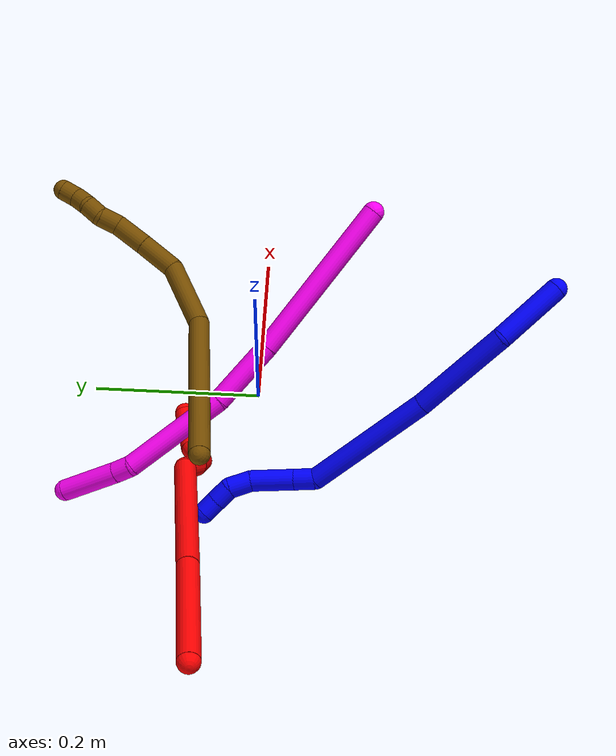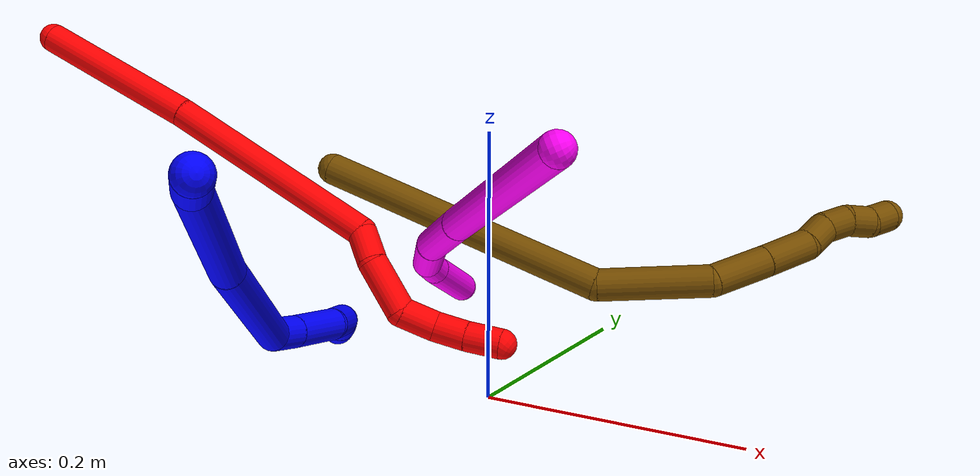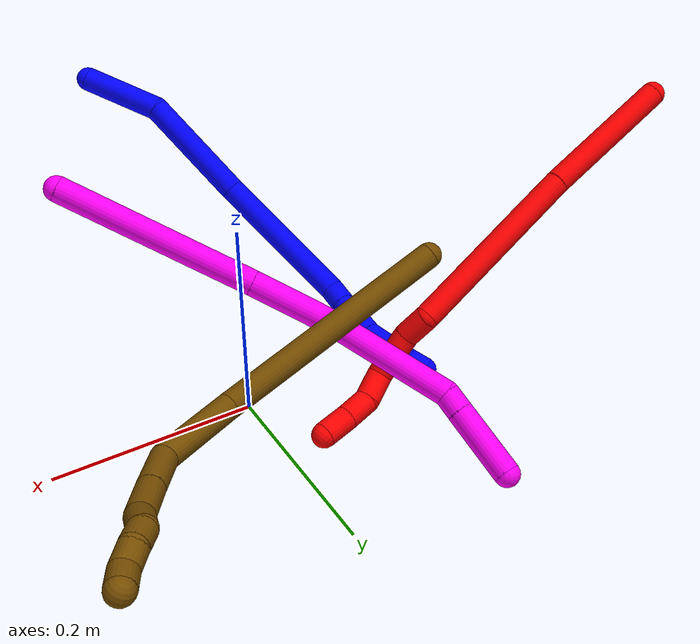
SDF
<sdf version="1.7">
 <world name="default">
  <model name="photoneo_s_sensor">
   <static>1</static>
   <pose>0 0 2 1.57079 1.57079 3.14159</pose>
   <link name="link">
    <inertial><mass>0.1</mass></inertial>
    <sensor name="sensor" type="depth">
     <update_rate>30</update_rate>
     <camera>
      <horizontal_fov>1.22</horizontal_fov>
      <image><width>1920</width><height>1200</height><format>B8G8R8</format></image>
      <clip><near>0.1</near><far>4</far></clip>
      <depth_camera><output>points</output></depth_camera>
     </camera>
     <plugin name="camera_plugin" filename="libgazebo_ros_depth_camera.so">
      <baseline>0.2</baseline>
      <alwaysOn>1</alwaysOn>
      <updateRate>0.0</updateRate>
      <cameraName>camera_ir</cameraName>
      <imageTopicName>/camera/color/image_raw</imageTopicName>
      <cameraInfoTopicName>/camera/color/camera_info</cameraInfoTopicName>
      <depthImageTopicName>/camera/depth/image_raw</depthImageTopicName>
      <depthImageCameraInfoTopicName>/camera/depth/camera_info</depthImageCameraInfoTopicName>
      <pointCloudTopicName>/camera/depth/points</pointCloudTopicName>
      <frameName>fr_optical</frameName>
      <pointCloudCutoff>0.1</pointCloudCutoff>
      <pointCloudCutoffMax>2.0</pointCloudCutoffMax>
      <distortionK1>0</distortionK1>
      <distortionK2>0</distortionK2>
      <distortionK3>0</distortionK3>
      <distortionT1>0</distortionT1>
      <distortionT2>0</distortionT2>
      <CxPrime>0</CxPrime>
      <Cx>0</Cx>
      <Cy>0</Cy>
      <focalLength>0</focalLength>
      <hackBaseline>0</hackBaseline>
     </plugin>
    </sensor>
   </link>
  </model>
  <model name="bin">
   <static>1</static>
   <link name="bottom">
    <collision name="collision-bottom">
     <pose>0 0 -0.01 0 -0 0</pose>
     <geometry><box><size>0.8 0.6 0.02</size></box></geometry>
     <surface>
      <friction><ode><mu>100</mu><mu2>100</mu2></ode></friction>
      <contact><collide_bitmask>65535</collide_bitmask></contact>
     </surface>
    </collision>
   </link>
   <link name="west_wall">
    <collision name="collision-west_wall">
     <pose>-0.41 0 0.1 0 -0 0</pose>
     <geometry><box><size>0.02 0.6 0.2</size></box></geometry>
     <surface>
      <friction><ode><mu>100</mu><mu2>100</mu2></ode></friction>
      <contact><collide_bitmask>65535</collide_bitmask></contact>
     </surface>
    </collision>
   </link>
   <link name="east_wall">
    <collision name="collision-east_wall">
     <pose>0.41 0 0.1 0 -0 0</pose>
     <geometry><box><size>0.02 0.6 0.2</size></box></geometry>
     <surface>
      <friction><ode><mu>100</mu><mu2>100</mu2></ode></friction>
      <contact><collide_bitmask>65535</collide_bitmask></contact>
     </surface>
    </collision>
   </link>
   <link name="south_wall">
    <collision name="collision-south_wall">
     <pose>0 -0.31 0.1 0 -0 0</pose>
     <geometry><box><size>0.8 0.02 0.2</size></box></geometry>
     <surface>
      <friction><ode><mu>100</mu><mu2>100</mu2></ode></friction>
      <contact><collide_bitmask>65535</collide_bitmask></contact>
     </surface>
    </collision>
   </link>
   <link name="north_wall">
    <collision name="collision-north_wall">
     <pose>0 0.31 0.1 0 -0 0</pose>
     <geometry><box><size>0.8 0.02 0.2</size></box></geometry>
     <surface>
      <friction><ode><mu>100</mu><mu2>100</mu2></ode></friction>
      <contact><collide_bitmask>65535</collide_bitmask></contact>
     </surface>
    </collision>
   </link>
  </model>
  <model name="1">
   <static>0</static>
   <link name="1">
    <collision name="collision-cylinder-e_1_1_4">
     <pose>-0.002635 0.006434 -0.040411 -2.98372 -0.064309 0.772421</pose>
     <geometry><cylinder><radius>0.0125</radius><length>0.082009</length></cylinder></geometry>
     <surface>
      <friction><ode><mu>1.16</mu><mu2>1.16</mu2><slip1>0</slip1><slip2>0</slip2></ode></friction>
      <contact><ode><kp>1e+06</kp><kd>1</kd><max_vel>0</max_vel><min_depth>0.001</min_depth></ode></contact>
     </surface>
    </collision>
    <visual name="visual-cylinder-e_1_1_4">
     <pose>-0.002635 0.006434 -0.040411 -2.98372 -0.064309 0.772421</pose>
     <geometry><cylinder><radius>0.0125</radius><length>0.082009</length></cylinder></geometry>
     <material><ambient>0 0 1 1</ambient></material>
    </visual>
    <collision name="collision-cylinder-e_2_4_5">
     <pose>0.001349 0.042916 -0.131971 -2.61042 0.111114 -0.403353</pose>
     <geometry><cylinder><radius>0.0125</radius><length>0.119381</length></cylinder></geometry>
     <surface>
      <friction><ode><mu>1.16</mu><mu2>1.16</mu2><slip1>0</slip1><slip2>0</slip2></ode></friction>
      <contact><ode><kp>1e+06</kp><kd>1</kd><max_vel>0</max_vel><min_depth>0.001</min_depth></ode></contact>
     </surface>
    </collision>
    <visual name="visual-cylinder-e_2_4_5">
     <pose>0.001349 0.042916 -0.131971 -2.61042 0.111114 -0.403353</pose>
     <geometry><cylinder><radius>0.0125</radius><length>0.119381</length></cylinder></geometry>
     <material><ambient>0 0 1 1</ambient></material>
    </visual>
    <collision name="collision-cylinder-e_3_5_6">
     <pose>0.008865 0.11132 -0.249902 -2.62027 0.011654 -0.043684</pose>
     <geometry><cylinder><radius>0.0125</radius><length>0.154035</length></cylinder></geometry>
     <surface>
      <friction><ode><mu>1.16</mu><mu2>1.16</mu2><slip1>0</slip1><slip2>0</slip2></ode></friction>
      <contact><ode><kp>1e+06</kp><kd>1</kd><max_vel>0</max_vel><min_depth>0.001</min_depth></ode></contact>
     </surface>
    </collision>
    <visual name="visual-cylinder-e_3_5_6">
     <pose>0.008865 0.11132 -0.249902 -2.62027 0.011654 -0.043684</pose>
     <geometry><cylinder><radius>0.0125</radius><length>0.154035</length></cylinder></geometry>
     <material><ambient>0 0 1 1</ambient></material>
    </visual>
    <collision name="collision-cylinder-e_4_6_7">
     <pose>0.003537 0.157117 -0.324651 -2.39016 -0.518809 1.18446</pose>
     <geometry><cylinder><radius>0.0125</radius><length>0.025109</length></cylinder></geometry>
     <surface>
      <friction><ode><mu>1.16</mu><mu2>1.16</mu2><slip1>0</slip1><slip2>0</slip2></ode></friction>
      <contact><ode><kp>1e+06</kp><kd>1</kd><max_vel>0</max_vel><min_depth>0.001</min_depth></ode></contact>
     </surface>
    </collision>
    <visual name="visual-cylinder-e_4_6_7">
     <pose>0.003537 0.157117 -0.324651 -2.39016 -0.518809 1.18446</pose>
     <geometry><cylinder><radius>0.0125</radius><length>0.025109</length></cylinder></geometry>
     <material><ambient>0 0 1 1</ambient></material>
    </visual>
    <collision name="collision-cylinder-e_5_7_8">
     <pose>-0.015891 0.179035 -0.348889 -2.41456 -0.544985 1.26709</pose>
     <geometry><cylinder><radius>0.0125</radius><length>0.050936</length></cylinder></geometry>
     <surface>
      <friction><ode><mu>1.16</mu><mu2>1.16</mu2><slip1>0</slip1><slip2>0</slip2></ode></friction>
      <contact><ode><kp>1e+06</kp><kd>1</kd><max_vel>0</max_vel><min_depth>0.001</min_depth></ode></contact>
     </surface>
    </collision>
    <visual name="visual-cylinder-e_5_7_8">
     <pose>-0.015891 0.179035 -0.348889 -2.41456 -0.544985 1.26709</pose>
     <geometry><cylinder><radius>0.0125</radius><length>0.050936</length></cylinder></geometry>
     <material><ambient>0 0 1 1</ambient></material>
    </visual>
    <collision name="collision-cylinder-e_6_8_9">
     <pose>-0.034239 0.198505 -0.376557 -2.7285 -0.39215 1.51736</pose>
     <geometry><cylinder><radius>0.0125</radius><length>0.026928</length></cylinder></geometry>
     <surface>
      <friction><ode><mu>1.16</mu><mu2>1.16</mu2><slip1>0</slip1><slip2>0</slip2></ode></friction>
      <contact><ode><kp>1e+06</kp><kd>1</kd><max_vel>0</max_vel><min_depth>0.001</min_depth></ode></contact>
     </surface>
    </collision>
    <visual name="visual-cylinder-e_6_8_9">
     <pose>-0.034239 0.198505 -0.376557 -2.7285 -0.39215 1.51736</pose>
     <geometry><cylinder><radius>0.0125</radius><length>0.026928</length></cylinder></geometry>
     <material><ambient>0 0 1 1</ambient></material>
    </visual>
    <collision name="collision-cylinder-e_7_9_10">
     <pose>-0.038576 0.206837 -0.39819 -2.82651 0.074961 -0.46361</pose>
     <geometry><cylinder><radius>0.0125</radius><length>0.021598</length></cylinder></geometry>
     <surface>
      <friction><ode><mu>1.16</mu><mu2>1.16</mu2><slip1>0</slip1><slip2>0</slip2></ode></friction>
      <contact><ode><kp>1e+06</kp><kd>1</kd><max_vel>0</max_vel><min_depth>0.001</min_depth></ode></contact>
     </surface>
    </collision>
    <visual name="visual-cylinder-e_7_9_10">
     <pose>-0.038576 0.206837 -0.39819 -2.82651 0.074961 -0.46361</pose>
     <geometry><cylinder><radius>0.0125</radius><length>0.021598</length></cylinder></geometry>
     <material><ambient>0 0 1 1</ambient></material>
    </visual>
    <collision name="collision-cylinder-e_8_10_2">
     <pose>-0.037288 0.212593 -0.418121 -2.89702 0.047981 -0.385627</pose>
     <geometry><cylinder><radius>0.0125</radius><length>0.020003</length></cylinder></geometry>
     <surface>
      <friction><ode><mu>1.16</mu><mu2>1.16</mu2><slip1>0</slip1><slip2>0</slip2></ode></friction>
      <contact><ode><kp>1e+06</kp><kd>1</kd><max_vel>0</max_vel><min_depth>0.001</min_depth></ode></contact>
     </surface>
    </collision>
    <visual name="visual-cylinder-e_8_10_2">
     <pose>-0.037288 0.212593 -0.418121 -2.89702 0.047981 -0.385627</pose>
     <geometry><cylinder><radius>0.0125</radius><length>0.020003</length></cylinder></geometry>
     <material><ambient>0 0 1 1</ambient></material>
    </visual>
    <collision name="collision-sphere-2">
     <pose>-0.036808 0.215012 -0.427814 0 -0 0</pose>
     <geometry><sphere><radius>0.0125</radius></sphere></geometry>
     <surface>
      <friction><ode><mu>1.16</mu><mu2>1.16</mu2><slip1>0</slip1><slip2>0</slip2></ode></friction>
      <contact><ode><kp>1e+06</kp><kd>1</kd><max_vel>0</max_vel><min_depth>0.001</min_depth></ode></contact>
     </surface>
    </collision>
    <visual name="visual-sphere-2">
     <pose>-0.036808 0.215012 -0.427814 0 -0 0</pose>
     <geometry><sphere><radius>0.0125</radius></sphere></geometry>
     <material><ambient>0 0 1 1</ambient></material>
    </visual>
    <collision name="collision-sphere-10">
     <pose>-0.037768 0.210174 -0.408429 0 -0 0</pose>
     <geometry><sphere><radius>0.0125</radius></sphere></geometry>
     <surface>
      <friction><ode><mu>1.16</mu><mu2>1.16</mu2><slip1>0</slip1><slip2>0</slip2></ode></friction>
      <contact><ode><kp>1e+06</kp><kd>1</kd><max_vel>0</max_vel><min_depth>0.001</min_depth></ode></contact>
     </surface>
    </collision>
    <visual name="visual-sphere-10">
     <pose>-0.037768 0.210174 -0.408429 0 -0 0</pose>
     <geometry><sphere><radius>0.0125</radius></sphere></geometry>
     <material><ambient>0 0 1 1</ambient></material>
    </visual>
    <collision name="collision-sphere-9">
     <pose>-0.039385 0.2035 -0.387952 0 -0 0</pose>
     <geometry><sphere><radius>0.0125</radius></sphere></geometry>
     <surface>
      <friction><ode><mu>1.16</mu><mu2>1.16</mu2><slip1>0</slip1><slip2>0</slip2></ode></friction>
      <contact><ode><kp>1e+06</kp><kd>1</kd><max_vel>0</max_vel><min_depth>0.001</min_depth></ode></contact>
     </surface>
    </collision>
    <visual name="visual-sphere-9">
     <pose>-0.039385 0.2035 -0.387952 0 -0 0</pose>
     <geometry><sphere><radius>0.0125</radius></sphere></geometry>
     <material><ambient>0 0 1 1</ambient></material>
    </visual>
    <collision name="collision-sphere-4">
     <pose>-0.00527 0.012867 -0.080822 0 -0 0</pose>
     <geometry><sphere><radius>0.0125</radius></sphere></geometry>
     <surface>
      <friction><ode><mu>1.16</mu><mu2>1.16</mu2><slip1>0</slip1><slip2>0</slip2></ode></friction>
      <contact><ode><kp>1e+06</kp><kd>1</kd><max_vel>0</max_vel><min_depth>0.001</min_depth></ode></contact>
     </surface>
    </collision>
    <visual name="visual-sphere-4">
     <pose>-0.00527 0.012867 -0.080822 0 -0 0</pose>
     <geometry><sphere><radius>0.0125</radius></sphere></geometry>
     <material><ambient>0 0 1 1</ambient></material>
    </visual>
    <collision name="collision-sphere-1">
     <geometry><sphere><radius>0.0125</radius></sphere></geometry>
     <surface>
      <friction><ode><mu>1.16</mu><mu2>1.16</mu2><slip1>0</slip1><slip2>0</slip2></ode></friction>
      <contact><ode><kp>1e+06</kp><kd>1</kd><max_vel>0</max_vel><min_depth>0.001</min_depth></ode></contact>
     </surface>
    </collision>
    <visual name="visual-sphere-1">
     <geometry><sphere><radius>0.0125</radius></sphere></geometry>
     <material><ambient>0 0 1 1</ambient></material>
    </visual>
    <collision name="collision-sphere-8">
     <pose>-0.029094 0.193511 -0.365161 0 -0 0</pose>
     <geometry><sphere><radius>0.0125</radius></sphere></geometry>
     <surface>
      <friction><ode><mu>1.16</mu><mu2>1.16</mu2><slip1>0</slip1><slip2>0</slip2></ode></friction>
      <contact><ode><kp>1e+06</kp><kd>1</kd><max_vel>0</max_vel><min_depth>0.001</min_depth></ode></contact>
     </surface>
    </collision>
    <visual name="visual-sphere-8">
     <pose>-0.029094 0.193511 -0.365161 0 -0 0</pose>
     <geometry><sphere><radius>0.0125</radius></sphere></geometry>
     <material><ambient>0 0 1 1</ambient></material>
    </visual>
    <collision name="collision-sphere-5">
     <pose>0.007967 0.072966 -0.18312 0 -0 0</pose>
     <geometry><sphere><radius>0.0125</radius></sphere></geometry>
     <surface>
      <friction><ode><mu>1.16</mu><mu2>1.16</mu2><slip1>0</slip1><slip2>0</slip2></ode></friction>
      <contact><ode><kp>1e+06</kp><kd>1</kd><max_vel>0</max_vel><min_depth>0.001</min_depth></ode></contact>
     </surface>
    </collision>
    <visual name="visual-sphere-5">
     <pose>0.007967 0.072966 -0.18312 0 -0 0</pose>
     <geometry><sphere><radius>0.0125</radius></sphere></geometry>
     <material><ambient>0 0 1 1</ambient></material>
    </visual>
    <collision name="collision-sphere-6">
     <pose>0.009762 0.149674 -0.316684 0 -0 0</pose>
     <geometry><sphere><radius>0.0125</radius></sphere></geometry>
     <surface>
      <friction><ode><mu>1.16</mu><mu2>1.16</mu2><slip1>0</slip1><slip2>0</slip2></ode></friction>
      <contact><ode><kp>1e+06</kp><kd>1</kd><max_vel>0</max_vel><min_depth>0.001</min_depth></ode></contact>
     </surface>
    </collision>
    <visual name="visual-sphere-6">
     <pose>0.009762 0.149674 -0.316684 0 -0 0</pose>
     <geometry><sphere><radius>0.0125</radius></sphere></geometry>
     <material><ambient>0 0 1 1</ambient></material>
    </visual>
    <collision name="collision-sphere-7">
     <pose>-0.002688 0.16456 -0.332617 0 -0 0</pose>
     <geometry><sphere><radius>0.0125</radius></sphere></geometry>
     <surface>
      <friction><ode><mu>1.16</mu><mu2>1.16</mu2><slip1>0</slip1><slip2>0</slip2></ode></friction>
      <contact><ode><kp>1e+06</kp><kd>1</kd><max_vel>0</max_vel><min_depth>0.001</min_depth></ode></contact>
     </surface>
    </collision>
    <visual name="visual-sphere-7">
     <pose>-0.002688 0.16456 -0.332617 0 -0 0</pose>
     <geometry><sphere><radius>0.0125</radius></sphere></geometry>
     <material><ambient>0 0 1 1</ambient></material>
    </visual>
    <inertial>
     <pose>-0.003823 0.099855 -0.221178 0 -0 0</pose>
     <mass>0.5</mass>
     <inertia>
      <ixx>0.000461</ixx>
      <ixy>0</ixy>
      <ixz>0</ixz>
      <iyy>-0.000423</iyy>
      <iyz>0</iyz>
      <izz>-0.000288</izz>
     </inertia>
    </inertial>
   </link>
   <pose>0.012994 -0.335062 0.226887 -1.20604 0.815914 -1.97547</pose>
  </model>
  <model name="2">
   <static>0</static>
   <link name="2">
    <collision name="collision-cylinder-e_1_1_4">
     <pose>0.011321 -0.001796 -0.071567 3.11651 0.15684 2.82501</pose>
     <geometry><cylinder><radius>0.0125</radius><length>0.144959</length></cylinder></geometry>
     <surface>
      <friction><ode><mu>1.16</mu><mu2>1.16</mu2><slip1>0</slip1><slip2>0</slip2></ode></friction>
      <contact><ode><kp>1e+06</kp><kd>1</kd><max_vel>0</max_vel><min_depth>0.001</min_depth></ode></contact>
     </surface>
    </collision>
    <visual name="visual-cylinder-e_1_1_4">
     <pose>0.011321 -0.001796 -0.071567 3.11651 0.15684 2.82501</pose>
     <geometry><cylinder><radius>0.0125</radius><length>0.144959</length></cylinder></geometry>
     <material><ambient>1 0 0 1</ambient></material>
    </visual>
    <collision name="collision-cylinder-e_2_4_5">
     <pose>0.031217 -0.005475 -0.238502 3.12185 0.089653 2.70829</pose>
     <geometry><cylinder><radius>0.0125</radius><length>0.191541</length></cylinder></geometry>
     <surface>
      <friction><ode><mu>1.16</mu><mu2>1.16</mu2><slip1>0</slip1><slip2>0</slip2></ode></friction>
      <contact><ode><kp>1e+06</kp><kd>1</kd><max_vel>0</max_vel><min_depth>0.001</min_depth></ode></contact>
     </surface>
    </collision>
    <visual name="visual-cylinder-e_2_4_5">
     <pose>0.031217 -0.005475 -0.238502 3.12185 0.089653 2.70829</pose>
     <geometry><cylinder><radius>0.0125</radius><length>0.191541</length></cylinder></geometry>
     <material><ambient>1 0 0 1</ambient></material>
    </visual>
    <collision name="collision-cylinder-e_3_5_6">
     <pose>0.03575 -0.014207 -0.345818 2.62111 -0.28546 -0.989777</pose>
     <geometry><cylinder><radius>0.0125</radius><length>0.028706</length></cylinder></geometry>
     <surface>
      <friction><ode><mu>1.16</mu><mu2>1.16</mu2><slip1>0</slip1><slip2>0</slip2></ode></friction>
      <contact><ode><kp>1e+06</kp><kd>1</kd><max_vel>0</max_vel><min_depth>0.001</min_depth></ode></contact>
     </surface>
    </collision>
    <visual name="visual-cylinder-e_3_5_6">
     <pose>0.03575 -0.014207 -0.345818 2.62111 -0.28546 -0.989777</pose>
     <geometry><cylinder><radius>0.0125</radius><length>0.028706</length></cylinder></geometry>
     <material><ambient>1 0 0 1</ambient></material>
    </visual>
    <collision name="collision-cylinder-e_4_6_7">
     <pose>0.024002 -0.025673 -0.379618 2.93336 -0.332238 -2.02695</pose>
     <geometry><cylinder><radius>0.0125</radius><length>0.047253</length></cylinder></geometry>
     <surface>
      <friction><ode><mu>1.16</mu><mu2>1.16</mu2><slip1>0</slip1><slip2>0</slip2></ode></friction>
      <contact><ode><kp>1e+06</kp><kd>1</kd><max_vel>0</max_vel><min_depth>0.001</min_depth></ode></contact>
     </surface>
    </collision>
    <visual name="visual-cylinder-e_4_6_7">
     <pose>0.024002 -0.025673 -0.379618 2.93336 -0.332238 -2.02695</pose>
     <geometry><cylinder><radius>0.0125</radius><length>0.047253</length></cylinder></geometry>
     <material><ambient>1 0 0 1</ambient></material>
    </visual>
    <collision name="collision-cylinder-e_5_7_8">
     <pose>0.01728 -0.025084 -0.41573 -2.79154 0.064734 -0.362181</pose>
     <geometry><cylinder><radius>0.0125</radius><length>0.030425</length></cylinder></geometry>
     <surface>
      <friction><ode><mu>1.16</mu><mu2>1.16</mu2><slip1>0</slip1><slip2>0</slip2></ode></friction>
      <contact><ode><kp>1e+06</kp><kd>1</kd><max_vel>0</max_vel><min_depth>0.001</min_depth></ode></contact>
     </surface>
    </collision>
    <visual name="visual-cylinder-e_5_7_8">
     <pose>0.01728 -0.025084 -0.41573 -2.79154 0.064734 -0.362181</pose>
     <geometry><cylinder><radius>0.0125</radius><length>0.030425</length></cylinder></geometry>
     <material><ambient>1 0 0 1</ambient></material>
    </visual>
    <collision name="collision-cylinder-e_6_8_9">
     <pose>0.022907 -0.018347 -0.442924 -3.02378 0.342412 -2.48417</pose>
     <geometry><cylinder><radius>0.0125</radius><length>0.027654</length></cylinder></geometry>
     <surface>
      <friction><ode><mu>1.16</mu><mu2>1.16</mu2><slip1>0</slip1><slip2>0</slip2></ode></friction>
      <contact><ode><kp>1e+06</kp><kd>1</kd><max_vel>0</max_vel><min_depth>0.001</min_depth></ode></contact>
     </surface>
    </collision>
    <visual name="visual-cylinder-e_6_8_9">
     <pose>0.022907 -0.018347 -0.442924 -3.02378 0.342412 -2.48417</pose>
     <geometry><cylinder><radius>0.0125</radius><length>0.027654</length></cylinder></geometry>
     <material><ambient>1 0 0 1</ambient></material>
    </visual>
    <collision name="collision-cylinder-e_7_9_2">
     <pose>0.033586 -0.015025 -0.469176 -3.00794 0.422189 -2.53617</pose>
     <geometry><cylinder><radius>0.0125</radius><length>0.029462</length></cylinder></geometry>
     <surface>
      <friction><ode><mu>1.16</mu><mu2>1.16</mu2><slip1>0</slip1><slip2>0</slip2></ode></friction>
      <contact><ode><kp>1e+06</kp><kd>1</kd><max_vel>0</max_vel><min_depth>0.001</min_depth></ode></contact>
     </surface>
    </collision>
    <visual name="visual-cylinder-e_7_9_2">
     <pose>0.033586 -0.015025 -0.469176 -3.00794 0.422189 -2.53617</pose>
     <geometry><cylinder><radius>0.0125</radius><length>0.029462</length></cylinder></geometry>
     <material><ambient>1 0 0 1</ambient></material>
    </visual>
    <collision name="collision-sphere-2">
     <pose>0.039622 -0.013235 -0.482494 0 -0 0</pose>
     <geometry><sphere><radius>0.0125</radius></sphere></geometry>
     <surface>
      <friction><ode><mu>1.16</mu><mu2>1.16</mu2><slip1>0</slip1><slip2>0</slip2></ode></friction>
      <contact><ode><kp>1e+06</kp><kd>1</kd><max_vel>0</max_vel><min_depth>0.001</min_depth></ode></contact>
     </surface>
    </collision>
    <visual name="visual-sphere-2">
     <pose>0.039622 -0.013235 -0.482494 0 -0 0</pose>
     <geometry><sphere><radius>0.0125</radius></sphere></geometry>
     <material><ambient>1 0 0 1</ambient></material>
    </visual>
    <collision name="collision-sphere-9">
     <pose>0.027549 -0.016816 -0.455858 0 -0 0</pose>
     <geometry><sphere><radius>0.0125</radius></sphere></geometry>
     <surface>
      <friction><ode><mu>1.16</mu><mu2>1.16</mu2><slip1>0</slip1><slip2>0</slip2></ode></friction>
      <contact><ode><kp>1e+06</kp><kd>1</kd><max_vel>0</max_vel><min_depth>0.001</min_depth></ode></contact>
     </surface>
    </collision>
    <visual name="visual-sphere-9">
     <pose>0.027549 -0.016816 -0.455858 0 -0 0</pose>
     <geometry><sphere><radius>0.0125</radius></sphere></geometry>
     <material><ambient>1 0 0 1</ambient></material>
    </visual>
    <collision name="collision-sphere-4">
     <pose>0.022642 -0.003591 -0.143134 0 -0 0</pose>
     <geometry><sphere><radius>0.0125</radius></sphere></geometry>
     <surface>
      <friction><ode><mu>1.16</mu><mu2>1.16</mu2><slip1>0</slip1><slip2>0</slip2></ode></friction>
      <contact><ode><kp>1e+06</kp><kd>1</kd><max_vel>0</max_vel><min_depth>0.001</min_depth></ode></contact>
     </surface>
    </collision>
    <visual name="visual-sphere-4">
     <pose>0.022642 -0.003591 -0.143134 0 -0 0</pose>
     <geometry><sphere><radius>0.0125</radius></sphere></geometry>
     <material><ambient>1 0 0 1</ambient></material>
    </visual>
    <collision name="collision-sphere-1">
     <geometry><sphere><radius>0.0125</radius></sphere></geometry>
     <surface>
      <friction><ode><mu>1.16</mu><mu2>1.16</mu2><slip1>0</slip1><slip2>0</slip2></ode></friction>
      <contact><ode><kp>1e+06</kp><kd>1</kd><max_vel>0</max_vel><min_depth>0.001</min_depth></ode></contact>
     </surface>
    </collision>
    <visual name="visual-sphere-1">
     <geometry><sphere><radius>0.0125</radius></sphere></geometry>
     <material><ambient>1 0 0 1</ambient></material>
    </visual>
    <collision name="collision-sphere-8">
     <pose>0.018264 -0.019878 -0.42999 0 -0 0</pose>
     <geometry><sphere><radius>0.0125</radius></sphere></geometry>
     <surface>
      <friction><ode><mu>1.16</mu><mu2>1.16</mu2><slip1>0</slip1><slip2>0</slip2></ode></friction>
      <contact><ode><kp>1e+06</kp><kd>1</kd><max_vel>0</max_vel><min_depth>0.001</min_depth></ode></contact>
     </surface>
    </collision>
    <visual name="visual-sphere-8">
     <pose>0.018264 -0.019878 -0.42999 0 -0 0</pose>
     <geometry><sphere><radius>0.0125</radius></sphere></geometry>
     <material><ambient>1 0 0 1</ambient></material>
    </visual>
    <collision name="collision-sphere-5">
     <pose>0.039791 -0.007358 -0.333869 0 -0 0</pose>
     <geometry><sphere><radius>0.0125</radius></sphere></geometry>
     <surface>
      <friction><ode><mu>1.16</mu><mu2>1.16</mu2><slip1>0</slip1><slip2>0</slip2></ode></friction>
      <contact><ode><kp>1e+06</kp><kd>1</kd><max_vel>0</max_vel><min_depth>0.001</min_depth></ode></contact>
     </surface>
    </collision>
    <visual name="visual-sphere-5">
     <pose>0.039791 -0.007358 -0.333869 0 -0 0</pose>
     <geometry><sphere><radius>0.0125</radius></sphere></geometry>
     <material><ambient>1 0 0 1</ambient></material>
    </visual>
    <collision name="collision-sphere-6">
     <pose>0.031708 -0.021056 -0.357766 0 -0 0</pose>
     <geometry><sphere><radius>0.0125</radius></sphere></geometry>
     <surface>
      <friction><ode><mu>1.16</mu><mu2>1.16</mu2><slip1>0</slip1><slip2>0</slip2></ode></friction>
      <contact><ode><kp>1e+06</kp><kd>1</kd><max_vel>0</max_vel><min_depth>0.001</min_depth></ode></contact>
     </surface>
    </collision>
    <visual name="visual-sphere-6">
     <pose>0.031708 -0.021056 -0.357766 0 -0 0</pose>
     <geometry><sphere><radius>0.0125</radius></sphere></geometry>
     <material><ambient>1 0 0 1</ambient></material>
    </visual>
    <collision name="collision-sphere-7">
     <pose>0.016296 -0.03029 -0.40147 0 -0 0</pose>
     <geometry><sphere><radius>0.0125</radius></sphere></geometry>
     <surface>
      <friction><ode><mu>1.16</mu><mu2>1.16</mu2><slip1>0</slip1><slip2>0</slip2></ode></friction>
      <contact><ode><kp>1e+06</kp><kd>1</kd><max_vel>0</max_vel><min_depth>0.001</min_depth></ode></contact>
     </surface>
    </collision>
    <visual name="visual-sphere-7">
     <pose>0.016296 -0.03029 -0.40147 0 -0 0</pose>
     <geometry><sphere><radius>0.0125</radius></sphere></geometry>
     <material><ambient>1 0 0 1</ambient></material>
    </visual>
    <inertial>
     <pose>0.023859 -0.009286 -0.245285 0 -0 0</pose>
     <mass>0.5</mass>
     <inertia>
      <ixx>-0.000469</ixx>
      <ixy>0</ixy>
      <ixz>0</ixz>
      <iyy>0.001102</iyy>
      <iyz>0</iyz>
      <izz>-0.00011</izz>
     </inertia>
    </inertial>
   </link>
   <pose>-0.460368 0.032047 0.23939 0.224449 -0.986874 -0.095469</pose>
  </model>
  <model name="10">
   <static>0</static>
   <link name="10">
    <collision name="collision-cylinder-e_1_1_4">
     <pose>-0.033007 0.078403 -0.051221 -2.14949 -0.338854 0.612316</pose>
     <geometry><cylinder><radius>0.0125</radius><length>0.198595</length></cylinder></geometry>
     <surface>
      <friction><ode><mu>1.16</mu><mu2>1.16</mu2><slip1>0</slip1><slip2>0</slip2></ode></friction>
      <contact><ode><kp>1e+06</kp><kd>1</kd><max_vel>0</max_vel><min_depth>0.001</min_depth></ode></contact>
     </surface>
    </collision>
    <visual name="visual-cylinder-e_1_1_4">
     <pose>-0.033007 0.078403 -0.051221 -2.14949 -0.338854 0.612316</pose>
     <geometry><cylinder><radius>0.0125</radius><length>0.198595</length></cylinder></geometry>
     <material><ambient>1 0 0.964706 1</ambient></material>
    </visual>
    <collision name="collision-cylinder-e_2_4_5">
     <pose>-0.080428 0.19051 -0.121362 -2.08232 -0.356929 0.597781</pose>
     <geometry><cylinder><radius>0.0125</radius><length>0.082505</length></cylinder></geometry>
     <surface>
      <friction><ode><mu>1.16</mu><mu2>1.16</mu2><slip1>0</slip1><slip2>0</slip2></ode></friction>
      <contact><ode><kp>1e+06</kp><kd>1</kd><max_vel>0</max_vel><min_depth>0.001</min_depth></ode></contact>
     </surface>
    </collision>
    <visual name="visual-cylinder-e_2_4_5">
     <pose>-0.080428 0.19051 -0.121362 -2.08232 -0.356929 0.597781</pose>
     <geometry><cylinder><radius>0.0125</radius><length>0.082505</length></cylinder></geometry>
     <material><ambient>1 0 0.964706 1</ambient></material>
    </visual>
    <collision name="collision-cylinder-e_3_5_6">
     <pose>-0.11802 0.280931 -0.157434 -1.86446 -0.372882 0.497688</pose>
     <geometry><cylinder><radius>0.0125</radius><length>0.127248</length></cylinder></geometry>
     <surface>
      <friction><ode><mu>1.16</mu><mu2>1.16</mu2><slip1>0</slip1><slip2>0</slip2></ode></friction>
      <contact><ode><kp>1e+06</kp><kd>1</kd><max_vel>0</max_vel><min_depth>0.001</min_depth></ode></contact>
     </surface>
    </collision>
    <visual name="visual-cylinder-e_3_5_6">
     <pose>-0.11802 0.280931 -0.157434 -1.86446 -0.372882 0.497688</pose>
     <geometry><cylinder><radius>0.0125</radius><length>0.127248</length></cylinder></geometry>
     <material><ambient>1 0 0.964706 1</ambient></material>
    </visual>
    <collision name="collision-cylinder-e_4_6_7">
     <pose>-0.142111 0.348178 -0.174625 -1.57468 -0.086453 0.086788</pose>
     <geometry><cylinder><radius>0.0125</radius><length>0.021143</length></cylinder></geometry>
     <surface>
      <friction><ode><mu>1.16</mu><mu2>1.16</mu2><slip1>0</slip1><slip2>0</slip2></ode></friction>
      <contact><ode><kp>1e+06</kp><kd>1</kd><max_vel>0</max_vel><min_depth>0.001</min_depth></ode></contact>
     </surface>
    </collision>
    <visual name="visual-cylinder-e_4_6_7">
     <pose>-0.142111 0.348178 -0.174625 -1.57468 -0.086453 0.086788</pose>
     <geometry><cylinder><radius>0.0125</radius><length>0.021143</length></cylinder></geometry>
     <material><ambient>1 0 0.964706 1</ambient></material>
    </visual>
    <collision name="collision-cylinder-e_5_7_2">
     <pose>-0.147123 0.393686 -0.173009 -1.52346 -0.11653 0.111151</pose>
     <geometry><cylinder><radius>0.0125</radius><length>0.070508</length></cylinder></geometry>
     <surface>
      <friction><ode><mu>1.16</mu><mu2>1.16</mu2><slip1>0</slip1><slip2>0</slip2></ode></friction>
      <contact><ode><kp>1e+06</kp><kd>1</kd><max_vel>0</max_vel><min_depth>0.001</min_depth></ode></contact>
     </surface>
    </collision>
    <visual name="visual-cylinder-e_5_7_2">
     <pose>-0.147123 0.393686 -0.173009 -1.52346 -0.11653 0.111151</pose>
     <geometry><cylinder><radius>0.0125</radius><length>0.070508</length></cylinder></geometry>
     <material><ambient>1 0 0.964706 1</ambient></material>
    </visual>
    <collision name="collision-sphere-2">
     <pose>-0.151222 0.428662 -0.171352 0 -0 0</pose>
     <geometry><sphere><radius>0.0125</radius></sphere></geometry>
     <surface>
      <friction><ode><mu>1.16</mu><mu2>1.16</mu2><slip1>0</slip1><slip2>0</slip2></ode></friction>
      <contact><ode><kp>1e+06</kp><kd>1</kd><max_vel>0</max_vel><min_depth>0.001</min_depth></ode></contact>
     </surface>
    </collision>
    <visual name="visual-sphere-2">
     <pose>-0.151222 0.428662 -0.171352 0 -0 0</pose>
     <geometry><sphere><radius>0.0125</radius></sphere></geometry>
     <material><ambient>1 0 0.964706 1</ambient></material>
    </visual>
    <collision name="collision-sphere-7">
     <pose>-0.143024 0.358711 -0.174666 0 -0 0</pose>
     <geometry><sphere><radius>0.0125</radius></sphere></geometry>
     <surface>
      <friction><ode><mu>1.16</mu><mu2>1.16</mu2><slip1>0</slip1><slip2>0</slip2></ode></friction>
      <contact><ode><kp>1e+06</kp><kd>1</kd><max_vel>0</max_vel><min_depth>0.001</min_depth></ode></contact>
     </surface>
    </collision>
    <visual name="visual-sphere-7">
     <pose>-0.143024 0.358711 -0.174666 0 -0 0</pose>
     <geometry><sphere><radius>0.0125</radius></sphere></geometry>
     <material><ambient>1 0 0.964706 1</ambient></material>
    </visual>
    <collision name="collision-sphere-6">
     <pose>-0.141198 0.337646 -0.174585 0 -0 0</pose>
     <geometry><sphere><radius>0.0125</radius></sphere></geometry>
     <surface>
      <friction><ode><mu>1.16</mu><mu2>1.16</mu2><slip1>0</slip1><slip2>0</slip2></ode></friction>
      <contact><ode><kp>1e+06</kp><kd>1</kd><max_vel>0</max_vel><min_depth>0.001</min_depth></ode></contact>
     </surface>
    </collision>
    <visual name="visual-sphere-6">
     <pose>-0.141198 0.337646 -0.174585 0 -0 0</pose>
     <geometry><sphere><radius>0.0125</radius></sphere></geometry>
     <material><ambient>1 0 0.964706 1</ambient></material>
    </visual>
    <collision name="collision-sphere-5">
     <pose>-0.094842 0.224216 -0.140283 0 -0 0</pose>
     <geometry><sphere><radius>0.0125</radius></sphere></geometry>
     <surface>
      <friction><ode><mu>1.16</mu><mu2>1.16</mu2><slip1>0</slip1><slip2>0</slip2></ode></friction>
      <contact><ode><kp>1e+06</kp><kd>1</kd><max_vel>0</max_vel><min_depth>0.001</min_depth></ode></contact>
     </surface>
    </collision>
    <visual name="visual-sphere-5">
     <pose>-0.094842 0.224216 -0.140283 0 -0 0</pose>
     <geometry><sphere><radius>0.0125</radius></sphere></geometry>
     <material><ambient>1 0 0.964706 1</ambient></material>
    </visual>
    <collision name="collision-sphere-1">
     <geometry><sphere><radius>0.0125</radius></sphere></geometry>
     <surface>
      <friction><ode><mu>1.16</mu><mu2>1.16</mu2><slip1>0</slip1><slip2>0</slip2></ode></friction>
      <contact><ode><kp>1e+06</kp><kd>1</kd><max_vel>0</max_vel><min_depth>0.001</min_depth></ode></contact>
     </surface>
    </collision>
    <visual name="visual-sphere-1">
     <geometry><sphere><radius>0.0125</radius></sphere></geometry>
     <material><ambient>1 0 0.964706 1</ambient></material>
    </visual>
    <collision name="collision-sphere-4">
     <pose>-0.066014 0.156805 -0.102441 0 -0 0</pose>
     <geometry><sphere><radius>0.0125</radius></sphere></geometry>
     <surface>
      <friction><ode><mu>1.16</mu><mu2>1.16</mu2><slip1>0</slip1><slip2>0</slip2></ode></friction>
      <contact><ode><kp>1e+06</kp><kd>1</kd><max_vel>0</max_vel><min_depth>0.001</min_depth></ode></contact>
     </surface>
    </collision>
    <visual name="visual-sphere-4">
     <pose>-0.066014 0.156805 -0.102441 0 -0 0</pose>
     <geometry><sphere><radius>0.0125</radius></sphere></geometry>
     <material><ambient>1 0 0.964706 1</ambient></material>
    </visual>
    <inertial>
     <pose>-0.083173 0.204312 -0.112218 0 -0 0</pose>
     <mass>0.5</mass>
     <inertia>
      <ixx>0.001181</ixx>
      <ixy>0</ixy>
      <ixz>0</ixz>
      <iyy>0.000285</iyy>
      <iyz>0</iyz>
      <izz>-0.000461</izz>
     </inertia>
    </inertial>
   </link>
   <pose>0.119046 -0.129002 0.218121 -0.913704 0.786446 -0.618316</pose>
  </model>
  <model name="12">
   <static>0</static>
   <link name="12">
    <collision name="collision-cylinder-e_1_1_4">
     <pose>0.083277 0.041576 -0.073826 -2.6287 0.776764 -2.00175</pose>
     <geometry><cylinder><radius>0.0125</radius><length>0.237603</length></cylinder></geometry>
     <surface>
      <friction><ode><mu>1.16</mu><mu2>1.16</mu2><slip1>0</slip1><slip2>0</slip2></ode></friction>
      <contact><ode><kp>1e+06</kp><kd>1</kd><max_vel>0</max_vel><min_depth>0.001</min_depth></ode></contact>
     </surface>
    </collision>
    <visual name="visual-cylinder-e_1_1_4">
     <pose>0.083277 0.041576 -0.073826 -2.6287 0.776764 -2.00175</pose>
     <geometry><cylinder><radius>0.0125</radius><length>0.237603</length></cylinder></geometry>
     <material><ambient>0.466667 0.301961 0 1</ambient></material>
    </visual>
    <collision name="collision-cylinder-e_2_4_5">
     <pose>0.198289 0.111145 -0.157173 -1.89865 0.820723 -1.09185</pose>
     <geometry><cylinder><radius>0.0125</radius><length>0.086751</length></cylinder></geometry>
     <surface>
      <friction><ode><mu>1.16</mu><mu2>1.16</mu2><slip1>0</slip1><slip2>0</slip2></ode></friction>
      <contact><ode><kp>1e+06</kp><kd>1</kd><max_vel>0</max_vel><min_depth>0.001</min_depth></ode></contact>
     </surface>
    </collision>
    <visual name="visual-cylinder-e_2_4_5">
     <pose>0.198289 0.111145 -0.157173 -1.89865 0.820723 -1.09185</pose>
     <geometry><cylinder><radius>0.0125</radius><length>0.086751</length></cylinder></geometry>
     <material><ambient>0.466667 0.301961 0 1</ambient></material>
    </visual>
    <collision name="collision-cylinder-e_3_5_6">
     <pose>0.240175 0.160622 -0.164188 -1.45466 0.438758 -0.391843</pose>
     <geometry><cylinder><radius>0.0125</radius><length>0.047785</length></cylinder></geometry>
     <surface>
      <friction><ode><mu>1.16</mu><mu2>1.16</mu2><slip1>0</slip1><slip2>0</slip2></ode></friction>
      <contact><ode><kp>1e+06</kp><kd>1</kd><max_vel>0</max_vel><min_depth>0.001</min_depth></ode></contact>
     </surface>
    </collision>
    <visual name="visual-cylinder-e_3_5_6">
     <pose>0.240175 0.160622 -0.164188 -1.45466 0.438758 -0.391843</pose>
     <geometry><cylinder><radius>0.0125</radius><length>0.047785</length></cylinder></geometry>
     <material><ambient>0.466667 0.301961 0 1</ambient></material>
    </visual>
    <collision name="collision-cylinder-e_4_6_7">
     <pose>0.258529 0.200603 -0.159071 -1.43058 0.413836 -0.360784</pose>
     <geometry><cylinder><radius>0.0125</radius><length>0.040805</length></cylinder></geometry>
     <surface>
      <friction><ode><mu>1.16</mu><mu2>1.16</mu2><slip1>0</slip1><slip2>0</slip2></ode></friction>
      <contact><ode><kp>1e+06</kp><kd>1</kd><max_vel>0</max_vel><min_depth>0.001</min_depth></ode></contact>
     </surface>
    </collision>
    <visual name="visual-cylinder-e_4_6_7">
     <pose>0.258529 0.200603 -0.159071 -1.43058 0.413836 -0.360784</pose>
     <geometry><cylinder><radius>0.0125</radius><length>0.040805</length></cylinder></geometry>
     <material><ambient>0.466667 0.301961 0 1</ambient></material>
    </visual>
    <collision name="collision-cylinder-e_5_7_8">
     <pose>0.268926 0.230348 -0.151521 -1.15701 0.17668 -0.11555</pose>
     <geometry><cylinder><radius>0.0125</radius><length>0.024958</length></cylinder></geometry>
     <surface>
      <friction><ode><mu>1.16</mu><mu2>1.16</mu2><slip1>0</slip1><slip2>0</slip2></ode></friction>
      <contact><ode><kp>1e+06</kp><kd>1</kd><max_vel>0</max_vel><min_depth>0.001</min_depth></ode></contact>
     </surface>
    </collision>
    <visual name="visual-cylinder-e_5_7_8">
     <pose>0.268926 0.230348 -0.151521 -1.15701 0.17668 -0.11555</pose>
     <geometry><cylinder><radius>0.0125</radius><length>0.024958</length></cylinder></geometry>
     <material><ambient>0.466667 0.301961 0 1</ambient></material>
    </visual>
    <collision name="collision-cylinder-e_6_8_9">
     <pose>0.276154 0.251151 -0.145796 -1.48878 0.483489 -0.446681</pose>
     <geometry><cylinder><radius>0.0125</radius><length>0.021657</length></cylinder></geometry>
     <surface>
      <friction><ode><mu>1.16</mu><mu2>1.16</mu2><slip1>0</slip1><slip2>0</slip2></ode></friction>
      <contact><ode><kp>1e+06</kp><kd>1</kd><max_vel>0</max_vel><min_depth>0.001</min_depth></ode></contact>
     </surface>
    </collision>
    <visual name="visual-cylinder-e_6_8_9">
     <pose>0.276154 0.251151 -0.145796 -1.48878 0.483489 -0.446681</pose>
     <geometry><cylinder><radius>0.0125</radius><length>0.021657</length></cylinder></geometry>
     <material><ambient>0.466667 0.301961 0 1</ambient></material>
    </visual>
    <collision name="collision-cylinder-e_7_9_10">
     <pose>0.285166 0.269637 -0.147622 -1.85523 0.404 -0.533455</pose>
     <geometry><cylinder><radius>0.0125</radius><length>0.020239</length></cylinder></geometry>
     <surface>
      <friction><ode><mu>1.16</mu><mu2>1.16</mu2><slip1>0</slip1><slip2>0</slip2></ode></friction>
      <contact><ode><kp>1e+06</kp><kd>1</kd><max_vel>0</max_vel><min_depth>0.001</min_depth></ode></contact>
     </surface>
    </collision>
    <visual name="visual-cylinder-e_7_9_10">
     <pose>0.285166 0.269637 -0.147622 -1.85523 0.404 -0.533455</pose>
     <geometry><cylinder><radius>0.0125</radius><length>0.020239</length></cylinder></geometry>
     <material><ambient>0.466667 0.301961 0 1</ambient></material>
    </visual>
    <collision name="collision-cylinder-e_8_10_2">
     <pose>0.291989 0.288225 -0.149407 -1.48546 0.285593 -0.262484</pose>
     <geometry><cylinder><radius>0.0125</radius><length>0.020201</length></cylinder></geometry>
     <surface>
      <friction><ode><mu>1.16</mu><mu2>1.16</mu2><slip1>0</slip1><slip2>0</slip2></ode></friction>
      <contact><ode><kp>1e+06</kp><kd>1</kd><max_vel>0</max_vel><min_depth>0.001</min_depth></ode></contact>
     </surface>
    </collision>
    <visual name="visual-cylinder-e_8_10_2">
     <pose>0.291989 0.288225 -0.149407 -1.48546 0.285593 -0.262484</pose>
     <geometry><cylinder><radius>0.0125</radius><length>0.020201</length></cylinder></geometry>
     <material><ambient>0.466667 0.301961 0 1</ambient></material>
    </visual>
    <collision name="collision-sphere-2">
     <pose>0.294835 0.297881 -0.148581 0 -0 0</pose>
     <geometry><sphere><radius>0.0125</radius></sphere></geometry>
     <surface>
      <friction><ode><mu>1.16</mu><mu2>1.16</mu2><slip1>0</slip1><slip2>0</slip2></ode></friction>
      <contact><ode><kp>1e+06</kp><kd>1</kd><max_vel>0</max_vel><min_depth>0.001</min_depth></ode></contact>
     </surface>
    </collision>
    <visual name="visual-sphere-2">
     <pose>0.294835 0.297881 -0.148581 0 -0 0</pose>
     <geometry><sphere><radius>0.0125</radius></sphere></geometry>
     <material><ambient>0.466667 0.301961 0 1</ambient></material>
    </visual>
    <collision name="collision-sphere-10">
     <pose>0.289144 0.278568 -0.150233 0 -0 0</pose>
     <geometry><sphere><radius>0.0125</radius></sphere></geometry>
     <surface>
      <friction><ode><mu>1.16</mu><mu2>1.16</mu2><slip1>0</slip1><slip2>0</slip2></ode></friction>
      <contact><ode><kp>1e+06</kp><kd>1</kd><max_vel>0</max_vel><min_depth>0.001</min_depth></ode></contact>
     </surface>
    </collision>
    <visual name="visual-sphere-10">
     <pose>0.289144 0.278568 -0.150233 0 -0 0</pose>
     <geometry><sphere><radius>0.0125</radius></sphere></geometry>
     <material><ambient>0.466667 0.301961 0 1</ambient></material>
    </visual>
    <collision name="collision-sphere-9">
     <pose>0.281187 0.260706 -0.145011 0 -0 0</pose>
     <geometry><sphere><radius>0.0125</radius></sphere></geometry>
     <surface>
      <friction><ode><mu>1.16</mu><mu2>1.16</mu2><slip1>0</slip1><slip2>0</slip2></ode></friction>
      <contact><ode><kp>1e+06</kp><kd>1</kd><max_vel>0</max_vel><min_depth>0.001</min_depth></ode></contact>
     </surface>
    </collision>
    <visual name="visual-sphere-9">
     <pose>0.281187 0.260706 -0.145011 0 -0 0</pose>
     <geometry><sphere><radius>0.0125</radius></sphere></geometry>
     <material><ambient>0.466667 0.301961 0 1</ambient></material>
    </visual>
    <collision name="collision-sphere-4">
     <pose>0.166554 0.083151 -0.147652 0 -0 0</pose>
     <geometry><sphere><radius>0.0125</radius></sphere></geometry>
     <surface>
      <friction><ode><mu>1.16</mu><mu2>1.16</mu2><slip1>0</slip1><slip2>0</slip2></ode></friction>
      <contact><ode><kp>1e+06</kp><kd>1</kd><max_vel>0</max_vel><min_depth>0.001</min_depth></ode></contact>
     </surface>
    </collision>
    <visual name="visual-sphere-4">
     <pose>0.166554 0.083151 -0.147652 0 -0 0</pose>
     <geometry><sphere><radius>0.0125</radius></sphere></geometry>
     <material><ambient>0.466667 0.301961 0 1</ambient></material>
    </visual>
    <collision name="collision-sphere-1">
     <geometry><sphere><radius>0.0125</radius></sphere></geometry>
     <surface>
      <friction><ode><mu>1.16</mu><mu2>1.16</mu2><slip1>0</slip1><slip2>0</slip2></ode></friction>
      <contact><ode><kp>1e+06</kp><kd>1</kd><max_vel>0</max_vel><min_depth>0.001</min_depth></ode></contact>
     </surface>
    </collision>
    <visual name="visual-sphere-1">
     <geometry><sphere><radius>0.0125</radius></sphere></geometry>
     <material><ambient>0.466667 0.301961 0 1</ambient></material>
    </visual>
    <collision name="collision-sphere-8">
     <pose>0.27112 0.241596 -0.146582 0 -0 0</pose>
     <geometry><sphere><radius>0.0125</radius></sphere></geometry>
     <surface>
      <friction><ode><mu>1.16</mu><mu2>1.16</mu2><slip1>0</slip1><slip2>0</slip2></ode></friction>
      <contact><ode><kp>1e+06</kp><kd>1</kd><max_vel>0</max_vel><min_depth>0.001</min_depth></ode></contact>
     </surface>
    </collision>
    <visual name="visual-sphere-8">
     <pose>0.27112 0.241596 -0.146582 0 -0 0</pose>
     <geometry><sphere><radius>0.0125</radius></sphere></geometry>
     <material><ambient>0.466667 0.301961 0 1</ambient></material>
    </visual>
    <collision name="collision-sphere-5">
     <pose>0.230025 0.139139 -0.166695 0 -0 0</pose>
     <geometry><sphere><radius>0.0125</radius></sphere></geometry>
     <surface>
      <friction><ode><mu>1.16</mu><mu2>1.16</mu2><slip1>0</slip1><slip2>0</slip2></ode></friction>
      <contact><ode><kp>1e+06</kp><kd>1</kd><max_vel>0</max_vel><min_depth>0.001</min_depth></ode></contact>
     </surface>
    </collision>
    <visual name="visual-sphere-5">
     <pose>0.230025 0.139139 -0.166695 0 -0 0</pose>
     <geometry><sphere><radius>0.0125</radius></sphere></geometry>
     <material><ambient>0.466667 0.301961 0 1</ambient></material>
    </visual>
    <collision name="collision-sphere-6">
     <pose>0.250324 0.182106 -0.161682 0 -0 0</pose>
     <geometry><sphere><radius>0.0125</radius></sphere></geometry>
     <surface>
      <friction><ode><mu>1.16</mu><mu2>1.16</mu2><slip1>0</slip1><slip2>0</slip2></ode></friction>
      <contact><ode><kp>1e+06</kp><kd>1</kd><max_vel>0</max_vel><min_depth>0.001</min_depth></ode></contact>
     </surface>
    </collision>
    <visual name="visual-sphere-6">
     <pose>0.250324 0.182106 -0.161682 0 -0 0</pose>
     <geometry><sphere><radius>0.0125</radius></sphere></geometry>
     <material><ambient>0.466667 0.301961 0 1</ambient></material>
    </visual>
    <collision name="collision-sphere-7">
     <pose>0.266733 0.2191 -0.156461 0 -0 0</pose>
     <geometry><sphere><radius>0.0125</radius></sphere></geometry>
     <surface>
      <friction><ode><mu>1.16</mu><mu2>1.16</mu2><slip1>0</slip1><slip2>0</slip2></ode></friction>
      <contact><ode><kp>1e+06</kp><kd>1</kd><max_vel>0</max_vel><min_depth>0.001</min_depth></ode></contact>
     </surface>
    </collision>
    <visual name="visual-sphere-7">
     <pose>0.266733 0.2191 -0.156461 0 -0 0</pose>
     <geometry><sphere><radius>0.0125</radius></sphere></geometry>
     <material><ambient>0.466667 0.301961 0 1</ambient></material>
    </visual>
    <inertial>
     <pose>0.166755 0.115699 -0.116916 0 -0 0</pose>
     <mass>0.5</mass>
     <inertia>
      <ixx>-0.001047</ixx>
      <ixy>0</ixy>
      <ixz>0</ixz>
      <iyy>4.6e-05</iyy>
      <iyz>0</iyz>
      <izz>-0.001308</izz>
     </inertia>
    </inertial>
   </link>
   <pose>-0.173867 0.050844 0.147054 -0.073925 -0.426301 -0.220349</pose>
  </model>
 </world>
</sdf>
